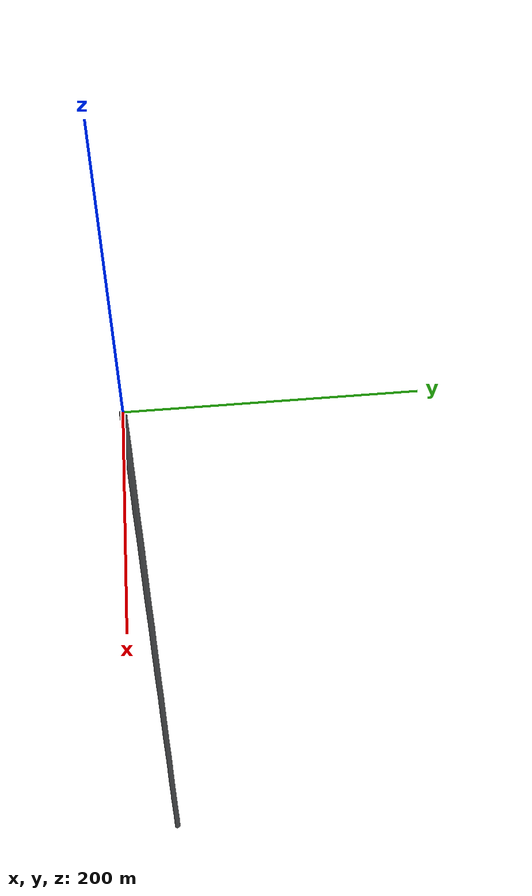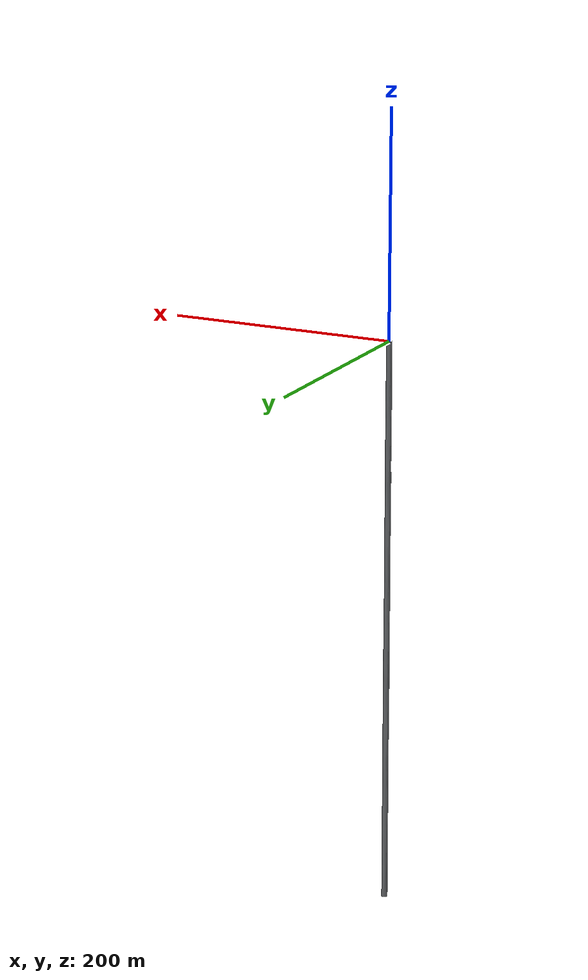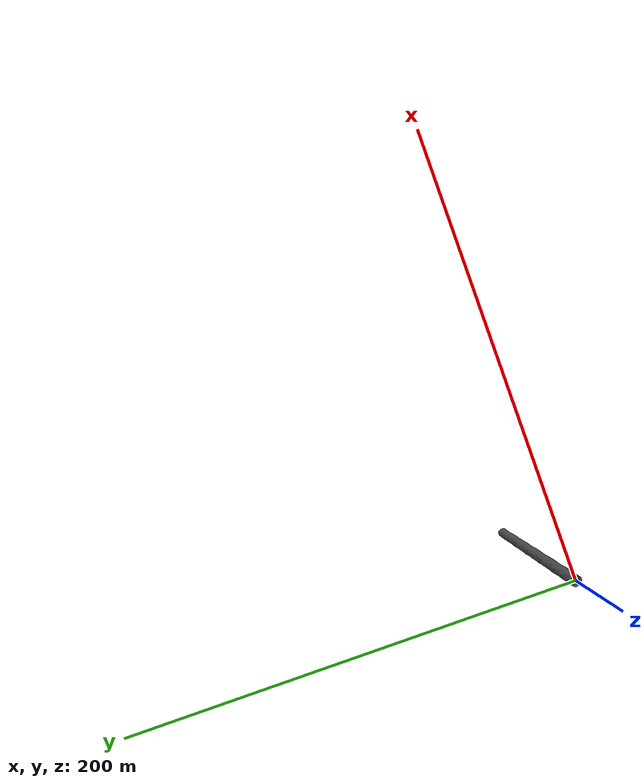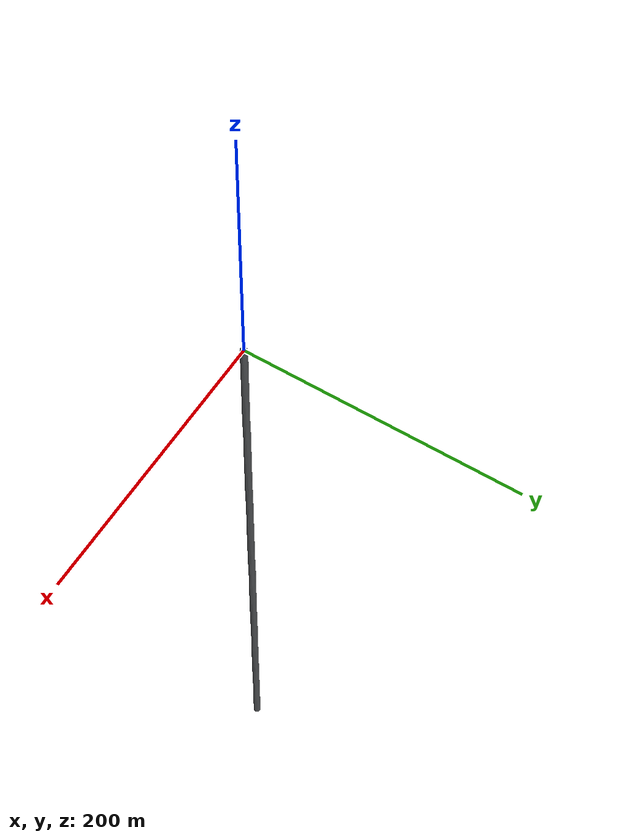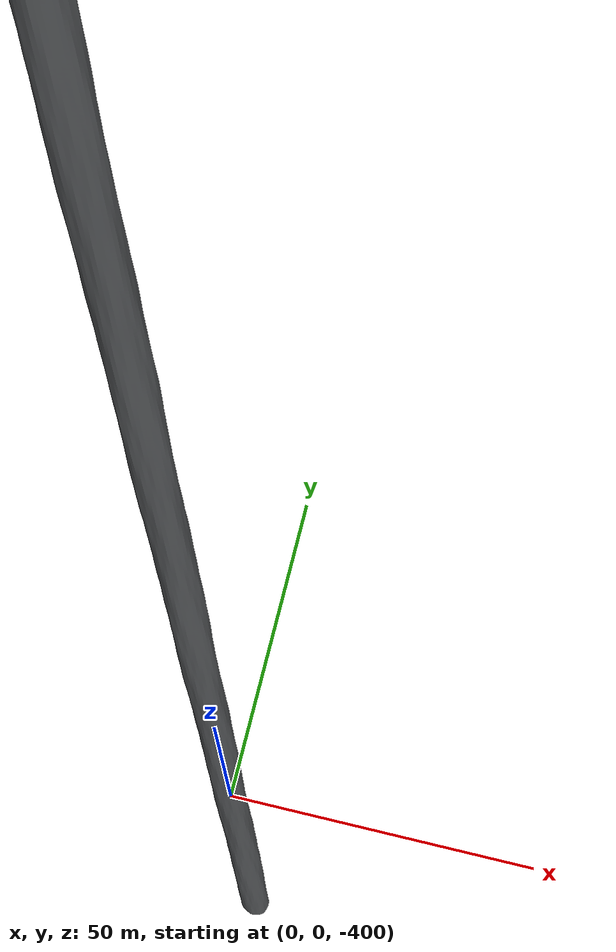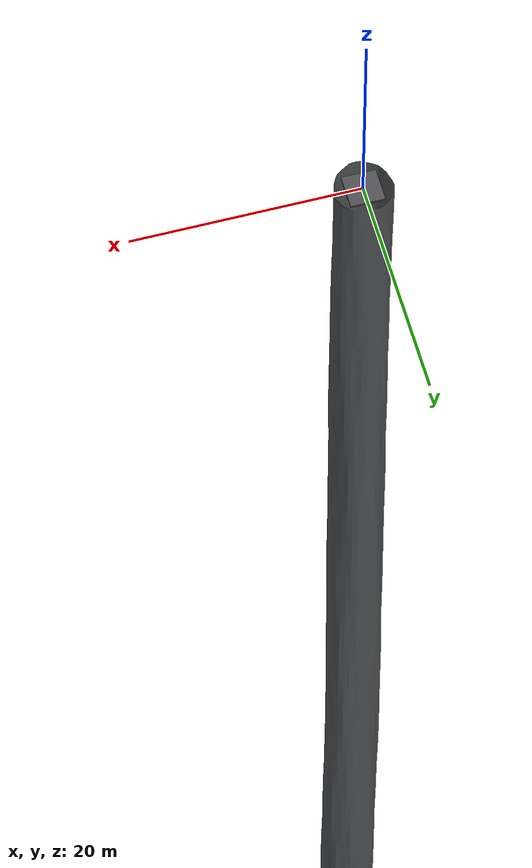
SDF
<?xml version="1.0"?>
<sdf version="1.6">
  <world name="shaft_500m_logic_sitl">
    <include><uri>model://sun</uri></include>
    <scene>
      <ambient>0.34 0.35 0.37 1</ambient>
      <background>0.035 0.038 0.043 1</background>
      <shadows>true</shadows>
    </scene>

    <include>
      <uri>model://shaft_rock_500m</uri>
      <name>shaft_rock_500m</name>
    </include>

    <!-- Removed automatically after the initial PX4 hover. -->
    <model name="shaft_launch_pad">
      <static>true</static>
      <pose>0 0 0 0 0 0</pose>
      <link name="link">
        <collision name="collision"><geometry><box><size>3 3 0.2</size></box></geometry></collision>
        <visual name="visual">
          <geometry><box><size>3 3 0.2</size></box></geometry>
          <material><ambient>0.18 0.18 0.19 1</ambient><diffuse>0.30 0.30 0.31 1</diffuse></material>
        </visual>
      </link>
    </model>
  </world>
</sdf>

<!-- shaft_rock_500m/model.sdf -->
<sdf version="1.6">
  <model name="shaft_rock_500m">
    <static>true</static>
    <link name="rock_shell">
      <collision name="collision">
        <geometry><mesh><uri>model://shaft_rock_500m/meshes/shaft_rock_inner.obj</uri></mesh></geometry>
        <surface>
          <friction><ode><mu>1.0</mu><mu2>1.0</mu2></ode></friction>
          <contact><ode><kp>1000000</kp><kd>100</kd></ode></contact>
        </surface>
      </collision>
      <visual name="visual">
        <geometry><mesh><uri>model://shaft_rock_500m/meshes/shaft_rock_inner.obj</uri></mesh></geometry>
        <material>
          <ambient>0.20 0.21 0.22 1</ambient>
          <diffuse>0.36 0.37 0.38 1</diffuse>
          <specular>0.025 0.025 0.025 1</specular>
        </material>
      </visual>
    </link>
  </model>
</sdf>
